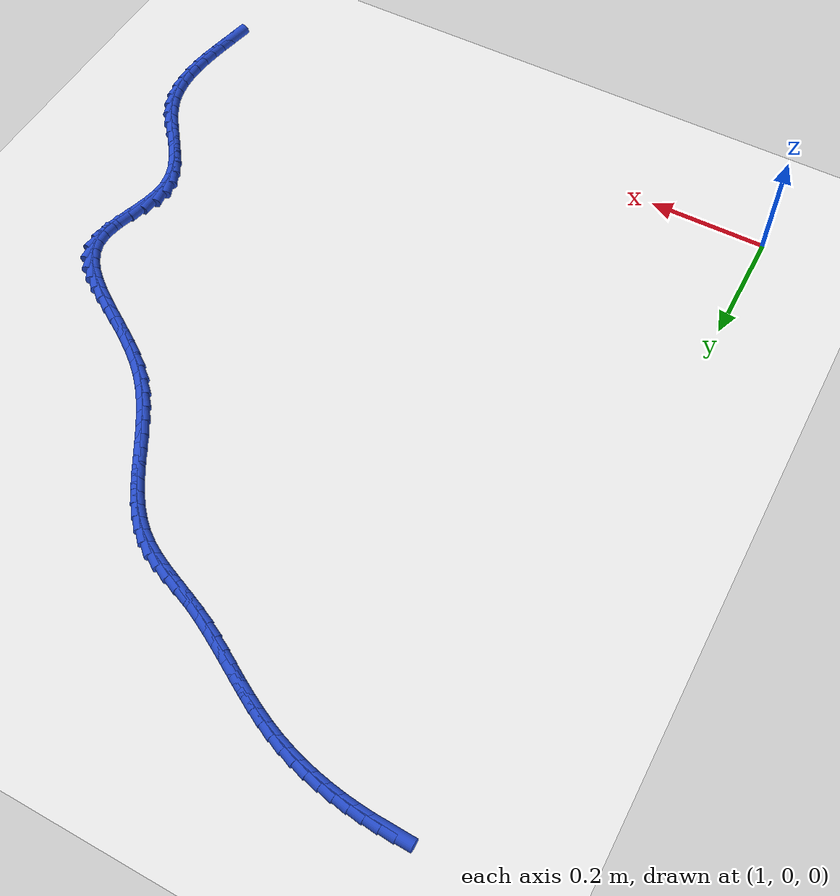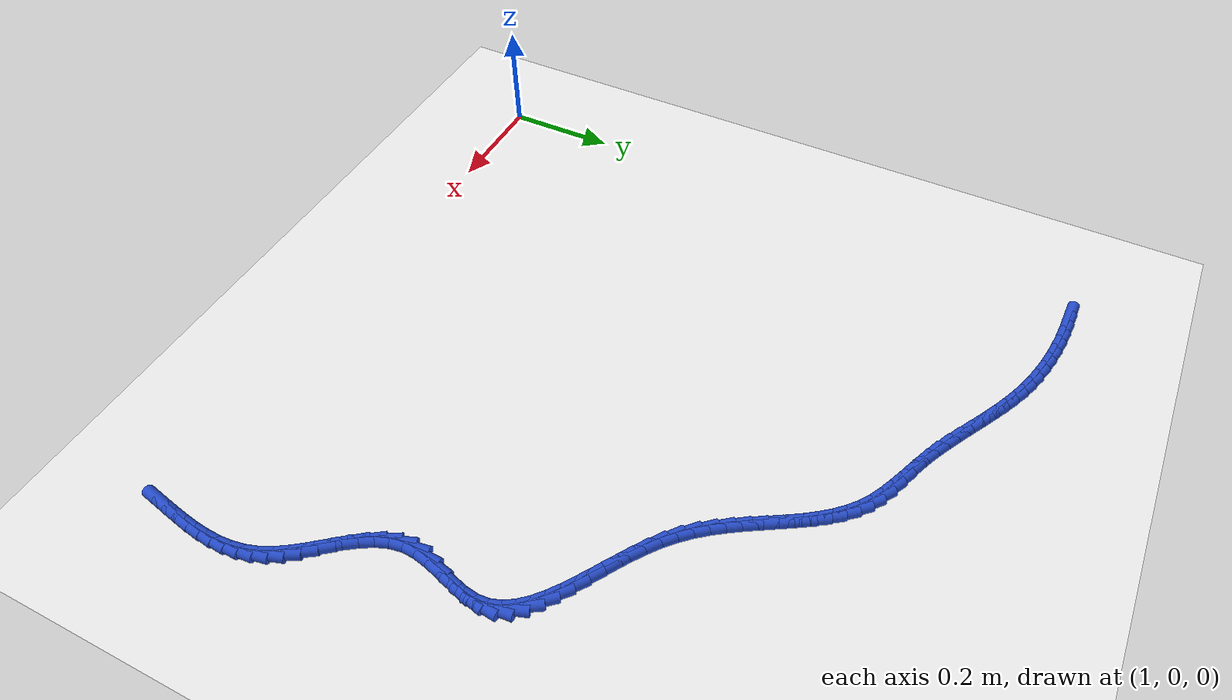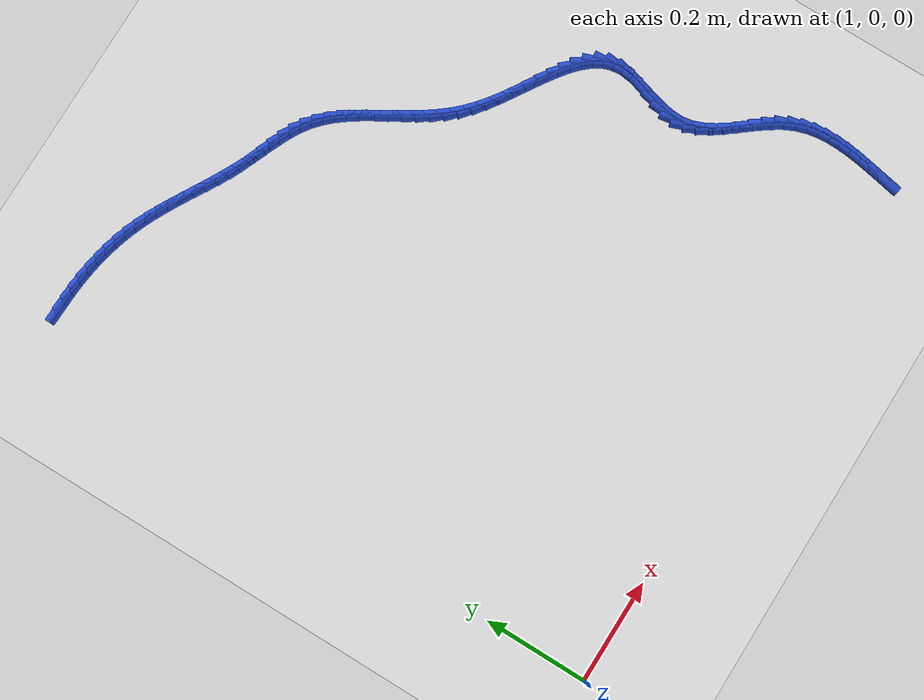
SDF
<sdf version="1.6">
 <world name="default">
  <model name="ground_plane">
   <static>1</static>
   <link name="link">
    <collision name="collision">
     <geometry><plane><normal>0 0 1</normal><size>100 100</size></plane></geometry>
     <surface><friction><ode><mu>100</mu><mu2>50</mu2></ode></friction></surface>
    </collision>
    <visual name="visual">
     <cast_shadows>0</cast_shadows>
     <geometry><plane><normal>0 0 1</normal><size>100 100</size></plane></geometry>
     <material>
      <script><uri>file://media/materials/scripts/gazebo.material</uri><name>Gazebo/WhiteGlow</name></script>
     </material>
    </visual>
   </link>
  </model>
  <model name="line">
   <link name="link_73">
    <pose>1.0784467428985038 1.1476919342570486 0.01 0 1.57 -0.032411989409883456</pose>
    <collision name="collision">
     <geometry><cylinder><radius>0.01</radius><length>0.08</length></cylinder></geometry>
    </collision>
    <visual name="visual">
     <material>
      <script><name>Gazebo/Blue</name><uri>file://media/materials/scripts/gazebo.material</uri></script>
     </material>
     <geometry><cylinder><radius>0.01</radius><length>0.08</length></cylinder></geometry>
    </visual>
   </link>
   <link name="link_74">
    <pose>1.1022425882525988 1.1469203933730785 0.01 0 1.57 -0.07182026784524694</pose>
    <collision name="collision">
     <geometry><cylinder><radius>0.01</radius><length>0.08</length></cylinder></geometry>
    </collision>
    <visual name="visual">
     <material>
      <script><name>Gazebo/Blue</name><uri>file://media/materials/scripts/gazebo.material</uri></script>
     </material>
     <geometry><cylinder><radius>0.01</radius><length>0.08</length></cylinder></geometry>
    </visual>
   </link>
   <link name="link_75">
    <pose>1.1259296271806787 1.1452162528133523 0.01 0 1.57 -0.11244699908991783</pose>
    <collision name="collision">
     <geometry><cylinder><radius>0.01</radius><length>0.08</length></cylinder></geometry>
    </collision>
    <visual name="visual">
     <material>
      <script><name>Gazebo/Blue</name><uri>file://media/materials/scripts/gazebo.material</uri></script>
     </material>
     <geometry><cylinder><radius>0.01</radius><length>0.08</length></cylinder></geometry>
    </visual>
   </link>
   <link name="link_76">
    <pose>1.1494521437725977 1.142560011501114 0.01 0 1.57 -0.1544463301866992</pose>
    <collision name="collision">
     <geometry><cylinder><radius>0.01</radius><length>0.08</length></cylinder></geometry>
    </collision>
    <visual name="visual">
     <material>
      <script><name>Gazebo/Blue</name><uri>file://media/materials/scripts/gazebo.material</uri></script>
     </material>
     <geometry><cylinder><radius>0.01</radius><length>0.08</length></cylinder></geometry>
    </visual>
   </link>
   <link name="link_77">
    <pose>1.1727544221182122 1.1389321683596079 0.01 0 1.57 -0.1979667975714191</pose>
    <collision name="collision">
     <geometry><cylinder><radius>0.01</radius><length>0.08</length></cylinder></geometry>
    </collision>
    <visual name="visual">
     <material>
      <script><name>Gazebo/Blue</name><uri>file://media/materials/scripts/gazebo.material</uri></script>
     </material>
     <geometry><cylinder><radius>0.01</radius><length>0.08</length></cylinder></geometry>
    </visual>
   </link>
   <link name="link_78">
    <pose>1.1957807463073766 1.1343132223120784 0.01 0 1.57 -0.24314838452428156</pose>
    <collision name="collision">
     <geometry><cylinder><radius>0.01</radius><length>0.08</length></cylinder></geometry>
    </collision>
    <visual name="visual">
     <material>
      <script><name>Gazebo/Blue</name><uri>file://media/materials/scripts/gazebo.material</uri></script>
     </material>
     <geometry><cylinder><radius>0.01</radius><length>0.08</length></cylinder></geometry>
    </visual>
   </link>
   <link name="link_79">
    <pose>1.2184754004299467 1.128683672281769 0.01 0 1.57 -0.29011858776635957</pose>
    <collision name="collision">
     <geometry><cylinder><radius>0.01</radius><length>0.08</length></cylinder></geometry>
    </collision>
    <visual name="visual">
     <material>
      <script><name>Gazebo/Blue</name><uri>file://media/materials/scripts/gazebo.material</uri></script>
     </material>
     <geometry><cylinder><radius>0.01</radius><length>0.08</length></cylinder></geometry>
    </visual>
   </link>
   <link name="link_80">
    <pose>1.2407826685757781 1.1220240171919245 0.01 0 1.57 -0.33898741573161895</pose>
    <collision name="collision">
     <geometry><cylinder><radius>0.01</radius><length>0.08</length></cylinder></geometry>
    </collision>
    <visual name="visual">
     <material>
      <script><name>Gazebo/Blue</name><uri>file://media/materials/scripts/gazebo.material</uri></script>
     </material>
     <geometry><cylinder><radius>0.01</radius><length>0.08</length></cylinder></geometry>
    </visual>
   </link>
   <link name="link_81">
    <pose>1.2626468348347253 1.1143147559657889 0.01 0 1.57 -0.3895558671958875</pose>
    <collision name="collision">
     <geometry><cylinder><radius>0.01</radius><length>0.08</length></cylinder></geometry>
    </collision>
    <visual name="visual">
     <material>
      <script><name>Gazebo/Blue</name><uri>file://media/materials/scripts/gazebo.material</uri></script>
     </material>
     <geometry><cylinder><radius>0.01</radius><length>0.08</length></cylinder></geometry>
    </visual>
   </link>
   <link name="link_82">
    <pose>1.284016403053521 1.1055417824618745 0.01 0 1.57 -0.43596270376463087</pose>
    <collision name="collision">
     <geometry><cylinder><radius>0.01</radius><length>0.08</length></cylinder></geometry>
    </collision>
    <visual name="visual">
     <material>
      <script><name>Gazebo/Blue</name><uri>file://media/materials/scripts/gazebo.material</uri></script>
     </material>
     <geometry><cylinder><radius>0.01</radius><length>0.08</length></cylinder></geometry>
    </visual>
   </link>
   <link name="link_83">
    <pose>1.30492587749679 1.095800941585911 0.01 0 1.57 -0.47248397393585767</pose>
    <collision name="collision">
     <geometry><cylinder><radius>0.01</radius><length>0.08</length></cylinder></geometry>
    </collision>
    <visual name="visual">
     <material>
      <script><name>Gazebo/Blue</name><uri>file://media/materials/scripts/gazebo.material</uri></script>
     </material>
     <geometry><cylinder><radius>0.01</radius><length>0.08</length></cylinder></geometry>
    </visual>
   </link>
   <link name="link_84">
    <pose>1.3254900361716824 1.085290707768817 0.01 0 1.57 -0.49875844273661835</pose>
    <collision name="collision">
     <geometry><cylinder><radius>0.01</radius><length>0.08</length></cylinder></geometry>
    </collision>
    <visual name="visual">
     <material>
      <script><name>Gazebo/Blue</name><uri>file://media/materials/scripts/gazebo.material</uri></script>
     </material>
     <geometry><cylinder><radius>0.01</radius><length>0.08</length></cylinder></geometry>
    </visual>
   </link>
   <link name="link_85">
    <pose>1.345826729801968 1.0742134838923088 0.01 0 1.57 -0.5147927376496255</pose>
    <collision name="collision">
     <geometry><cylinder><radius>0.01</radius><length>0.08</length></cylinder></geometry>
    </collision>
    <visual name="visual">
     <material>
      <script><name>Gazebo/Blue</name><uri>file://media/materials/scripts/gazebo.material</uri></script>
     </material>
     <geometry><cylinder><radius>0.01</radius><length>0.08</length></cylinder></geometry>
    </visual>
   </link>
   <link name="link_86">
    <pose>1.3660538091114172 1.0627716728381018 0.01 0 1.57 -0.5206706251174289</pose>
    <collision name="collision">
     <geometry><cylinder><radius>0.01</radius><length>0.08</length></cylinder></geometry>
    </collision>
    <visual name="visual">
     <material>
      <script><name>Gazebo/Blue</name><uri>file://media/materials/scripts/gazebo.material</uri></script>
     </material>
     <geometry><cylinder><radius>0.01</radius><length>0.08</length></cylinder></geometry>
    </visual>
   </link>
   <link name="link_87">
    <pose>1.3862891248237996 1.0511676774879117 0.01 0 1.57 -0.516501979198563</pose>
    <collision name="collision">
     <geometry><cylinder><radius>0.01</radius><length>0.08</length></cylinder></geometry>
    </collision>
    <visual name="visual">
     <material>
      <script><name>Gazebo/Blue</name><uri>file://media/materials/scripts/gazebo.material</uri></script>
     </material>
     <geometry><cylinder><radius>0.01</radius><length>0.08</length></cylinder></geometry>
    </visual>
   </link>
   <link name="link_88">
    <pose>1.4066505276628851 1.0396039007234548 0.01 0 1.57 -0.5024041049356002</pose>
    <collision name="collision">
     <geometry><cylinder><radius>0.01</radius><length>0.08</length></cylinder></geometry>
    </collision>
    <visual name="visual">
     <material>
      <script><name>Gazebo/Blue</name><uri>file://media/materials/scripts/gazebo.material</uri></script>
     </material>
     <geometry><cylinder><radius>0.01</radius><length>0.08</length></cylinder></geometry>
    </visual>
   </link>
   <link name="link_89">
    <pose>1.4272558683524432 1.028282745426446 0.01 0 1.57 -0.4785135246268793</pose>
    <collision name="collision">
     <geometry><cylinder><radius>0.01</radius><length>0.08</length></cylinder></geometry>
    </collision>
    <visual name="visual">
     <material>
      <script><name>Gazebo/Blue</name><uri>file://media/materials/scripts/gazebo.material</uri></script>
     </material>
     <geometry><cylinder><radius>0.01</radius><length>0.08</length></cylinder></geometry>
    </visual>
   </link>
   <link name="link_90">
    <pose>1.448222997616245 1.0174066144786018 0.01 0 1.57 -0.44502557548570587</pose>
    <collision name="collision">
     <geometry><cylinder><radius>0.01</radius><length>0.08</length></cylinder></geometry>
    </collision>
    <visual name="visual">
     <material>
      <script><name>Gazebo/Blue</name><uri>file://media/materials/scripts/gazebo.material</uri></script>
     </material>
     <geometry><cylinder><radius>0.01</radius><length>0.08</length></cylinder></geometry>
    </visual>
   </link>
   <link name="link_91">
    <pose>1.469669765419482 1.0071779098291722 0.01 0 1.57 -0.40865996470542537</pose>
    <collision name="collision">
     <geometry><cylinder><radius>0.01</radius><length>0.08</length></cylinder></geometry>
    </collision>
    <visual name="visual">
     <material>
      <script><name>Gazebo/Blue</name><uri>file://media/materials/scripts/gazebo.material</uri></script>
     </material>
     <geometry><cylinder><radius>0.01</radius><length>0.08</length></cylinder></geometry>
    </visual>
   </link>
   <link name="link_92">
    <pose>1.491613469087309 0.9976754312734928 0.01 0 1.57 -0.39337908089786666</pose>
    <collision name="collision">
     <geometry><cylinder><radius>0.01</radius><length>0.08</length></cylinder></geometry>
    </collision>
    <visual name="visual">
     <material>
      <script><name>Gazebo/Blue</name><uri>file://media/materials/scripts/gazebo.material</uri></script>
     </material>
     <geometry><cylinder><radius>0.01</radius><length>0.08</length></cylinder></geometry>
    </visual>
   </link>
   <link name="link_93">
    <pose>1.5136926130683188 0.9885123556713457 0.01 0 1.57 -0.40460956249673935</pose>
    <collision name="collision">
     <geometry><cylinder><radius>0.01</radius><length>0.08</length></cylinder></geometry>
    </collision>
    <visual name="visual">
     <material>
      <script><name>Gazebo/Blue</name><uri>file://media/materials/scripts/gazebo.material</uri></script>
     </material>
     <geometry><cylinder><radius>0.01</radius><length>0.08</length></cylinder></geometry>
    </visual>
   </link>
   <link name="link_94">
    <pose>1.5354565209061866 0.9791922361875839 0.01 0 1.57 -0.4434313350638356</pose>
    <collision name="collision">
     <geometry><cylinder><radius>0.01</radius><length>0.08</length></cylinder></geometry>
    </collision>
    <visual name="visual">
     <material>
      <script><name>Gazebo/Blue</name><uri>file://media/materials/scripts/gazebo.material</uri></script>
     </material>
     <geometry><cylinder><radius>0.01</radius><length>0.08</length></cylinder></geometry>
    </visual>
   </link>
   <link name="link_95">
    <pose>1.5564545161445869 0.96921862598706 0.01 0 1.57 -0.5122553036412957</pose>
    <collision name="collision">
     <geometry><cylinder><radius>0.01</radius><length>0.08</length></cylinder></geometry>
    </collision>
    <visual name="visual">
     <material>
      <script><name>Gazebo/Blue</name><uri>file://media/materials/scripts/gazebo.material</uri></script>
     </material>
     <geometry><cylinder><radius>0.01</radius><length>0.08</length></cylinder></geometry>
    </visual>
   </link>
   <link name="link_96">
    <pose>1.5762359223271944 0.9580950782346264 0.01 0 1.57 -0.6133424232099304</pose>
    <collision name="collision">
     <geometry><cylinder><radius>0.01</radius><length>0.08</length></cylinder></geometry>
    </collision>
    <visual name="visual">
     <material>
      <script><name>Gazebo/Blue</name><uri>file://media/materials/scripts/gazebo.material</uri></script>
     </material>
     <geometry><cylinder><radius>0.01</radius><length>0.08</length></cylinder></geometry>
    </visual>
   </link>
   <link name="link_97">
    <pose>1.5943615373766453 0.9453363547408489 0.01 0 1.57 -0.7266050376617922</pose>
    <collision name="collision">
     <geometry><cylinder><radius>0.01</radius><length>0.08</length></cylinder></geometry>
    </collision>
    <visual name="visual">
     <material>
      <script><name>Gazebo/Blue</name><uri>file://media/materials/scripts/gazebo.material</uri></script>
     </material>
     <geometry><cylinder><radius>0.01</radius><length>0.08</length></cylinder></geometry>
    </visual>
   </link>
   <link name="link_98">
    <pose>1.610730251431063 0.9307874797100338 0.01 0 1.57 -0.8247679660352057</pose>
    <collision name="collision">
     <geometry><cylinder><radius>0.01</radius><length>0.08</length></cylinder></geometry>
    </collision>
    <visual name="visual">
     <material>
      <script><name>Gazebo/Blue</name><uri>file://media/materials/scripts/gazebo.material</uri></script>
     </material>
     <geometry><cylinder><radius>0.01</radius><length>0.08</length></cylinder></geometry>
    </visual>
   </link>
   <link name="link_99">
    <pose>1.6256262498714764 0.914669849600528 0.01 0 1.57 -0.9040466013033118</pose>
    <collision name="collision">
     <geometry><cylinder><radius>0.01</radius><length>0.08</length></cylinder></geometry>
    </collision>
    <visual name="visual">
     <material>
      <script><name>Gazebo/Blue</name><uri>file://media/materials/scripts/gazebo.material</uri></script>
     </material>
     <geometry><cylinder><radius>0.01</radius><length>0.08</length></cylinder></geometry>
    </visual>
   </link>
   <link name="link_100">
    <pose>1.639354683639745 0.8972253408935515 0.01 0 1.57 -0.9638704088971833</pose>
    <collision name="collision">
     <geometry><cylinder><radius>0.01</radius><length>0.08</length></cylinder></geometry>
    </collision>
    <visual name="visual">
     <material>
      <script><name>Gazebo/Blue</name><uri>file://media/materials/scripts/gazebo.material</uri></script>
     </material>
     <geometry><cylinder><radius>0.01</radius><length>0.08</length></cylinder></geometry>
    </visual>
   </link>
   <link name="link_101">
    <pose>1.6522207036777286 0.8786958300703258 0.01 0 1.57 -1.0047759417688586</pose>
    <collision name="collision">
     <geometry><cylinder><radius>0.01</radius><length>0.08</length></cylinder></geometry>
    </collision>
    <visual name="visual">
     <material>
      <script><name>Gazebo/Blue</name><uri>file://media/materials/scripts/gazebo.material</uri></script>
     </material>
     <geometry><cylinder><radius>0.01</radius><length>0.08</length></cylinder></geometry>
    </visual>
   </link>
   <link name="link_102">
    <pose>1.664529460927288 0.85932319361207 0.01 0 1.57 -1.0277189978190664</pose>
    <collision name="collision">
     <geometry><cylinder><radius>0.01</radius><length>0.08</length></cylinder></geometry>
    </collision>
    <visual name="visual">
     <material>
      <script><name>Gazebo/Blue</name><uri>file://media/materials/scripts/gazebo.material</uri></script>
     </material>
     <geometry><cylinder><radius>0.01</radius><length>0.08</length></cylinder></geometry>
    </visual>
   </link>
   <link name="link_103">
    <pose>1.6765861063302832 0.8393493080000056 0.01 0 1.57 -1.033647594485761</pose>
    <collision name="collision">
     <geometry><cylinder><radius>0.01</radius><length>0.08</length></cylinder></geometry>
    </collision>
    <visual name="visual">
     <material>
      <script><name>Gazebo/Blue</name><uri>file://media/materials/scripts/gazebo.material</uri></script>
     </material>
     <geometry><cylinder><radius>0.01</radius><length>0.08</length></cylinder></geometry>
    </visual>
   </link>
   <link name="link_104">
    <pose>1.688695790828575 0.8190160497153529 0.01 0 1.57 -1.023308867074047</pose>
    <collision name="collision">
     <geometry><cylinder><radius>0.01</radius><length>0.08</length></cylinder></geometry>
    </collision>
    <visual name="visual">
     <material>
      <script><name>Gazebo/Blue</name><uri>file://media/materials/scripts/gazebo.material</uri></script>
     </material>
     <geometry><cylinder><radius>0.01</radius><length>0.08</length></cylinder></geometry>
    </visual>
   </link>
   <link name="link_105">
    <pose>1.7011636653640225 0.7985652952393324 0.01 0 1.57 -0.9972250849934721</pose>
    <collision name="collision">
     <geometry><cylinder><radius>0.01</radius><length>0.08</length></cylinder></geometry>
    </collision>
    <visual name="visual">
     <material>
      <script><name>Gazebo/Blue</name><uri>file://media/materials/scripts/gazebo.material</uri></script>
     </material>
     <geometry><cylinder><radius>0.01</radius><length>0.08</length></cylinder></geometry>
    </visual>
   </link>
   <link name="link_106">
    <pose>1.7142948808784868 0.7782389210531651 0.01 0 1.57 -0.9557919567769172</pose>
    <collision name="collision">
     <geometry><cylinder><radius>0.01</radius><length>0.08</length></cylinder></geometry>
    </collision>
    <visual name="visual">
     <material>
      <script><name>Gazebo/Blue</name><uri>file://media/materials/scripts/gazebo.material</uri></script>
     </material>
     <geometry><cylinder><radius>0.01</radius><length>0.08</length></cylinder></geometry>
    </visual>
   </link>
   <link name="link_107">
    <pose>1.7283945883138283 0.758278803638071 0.01 0 1.57 -0.8994751108956559</pose>
    <collision name="collision">
     <geometry><cylinder><radius>0.01</radius><length>0.08</length></cylinder></geometry>
    </collision>
    <visual name="visual">
     <material>
      <script><name>Gazebo/Blue</name><uri>file://media/materials/scripts/gazebo.material</uri></script>
     </material>
     <geometry><cylinder><radius>0.01</radius><length>0.08</length></cylinder></geometry>
    </visual>
   </link>
   <link name="link_108">
    <pose>1.743767938611906 0.738926819475271 0.01 0 1.57 -0.8290840407420598</pose>
    <collision name="collision">
     <geometry><cylinder><radius>0.01</radius><length>0.08</length></cylinder></geometry>
    </collision>
    <visual name="visual">
     <material>
      <script><name>Gazebo/Blue</name><uri>file://media/materials/scripts/gazebo.material</uri></script>
     </material>
     <geometry><cylinder><radius>0.01</radius><length>0.08</length></cylinder></geometry>
    </visual>
   </link>
   <link name="link_109">
    <pose>1.760720082714581 0.720424845045985 0.01 0 1.57 -0.7465015414757359</pose>
    <collision name="collision">
     <geometry><cylinder><radius>0.01</radius><length>0.08</length></cylinder></geometry>
    </collision>
    <visual name="visual">
     <material>
      <script><name>Gazebo/Blue</name><uri>file://media/materials/scripts/gazebo.material</uri></script>
     </material>
     <geometry><cylinder><radius>0.01</radius><length>0.08</length></cylinder></geometry>
    </visual>
   </link>
   <link name="link_110">
    <pose>1.7795460689928937 0.7030092453856823 0.01 0 1.57 -0.6688742627058977</pose>
    <collision name="collision">
     <geometry><cylinder><radius>0.01</radius><length>0.08</length></cylinder></geometry>
    </collision>
    <visual name="visual">
     <material>
      <script><name>Gazebo/Blue</name><uri>file://media/materials/scripts/gazebo.material</uri></script>
     </material>
     <geometry><cylinder><radius>0.01</radius><length>0.08</length></cylinder></geometry>
    </visual>
   </link>
   <link name="link_111">
    <pose>1.8001652016699177 0.6867113987472433 0.01 0 1.57 -0.6141756077364571</pose>
    <collision name="collision">
     <geometry><cylinder><radius>0.01</radius><length>0.08</length></cylinder></geometry>
    </collision>
    <visual name="visual">
     <material>
      <script><name>Gazebo/Blue</name><uri>file://media/materials/scripts/gazebo.material</uri></script>
     </material>
     <geometry><cylinder><radius>0.01</radius><length>0.08</length></cylinder></geometry>
    </visual>
   </link>
   <link name="link_112">
    <pose>1.8220182895036416 0.6713016407395035 0.01 0 1.57 -0.5809030800904089</pose>
    <collision name="collision">
     <geometry><cylinder><radius>0.01</radius><length>0.08</length></cylinder></geometry>
    </collision>
    <visual name="visual">
     <material>
      <script><name>Gazebo/Blue</name><uri>file://media/materials/scripts/gazebo.material</uri></script>
     </material>
     <geometry><cylinder><radius>0.01</radius><length>0.08</length></cylinder></geometry>
    </visual>
   </link>
   <link name="link_113">
    <pose>1.844515111227423 0.6565333785774754 0.01 0 1.57 -0.567459454393806</pose>
    <collision name="collision">
     <geometry><cylinder><radius>0.01</radius><length>0.08</length></cylinder></geometry>
    </collision>
    <visual name="visual">
     <material>
      <script><name>Gazebo/Blue</name><uri>file://media/materials/scripts/gazebo.material</uri></script>
     </material>
     <geometry><cylinder><radius>0.01</radius><length>0.08</length></cylinder></geometry>
    </visual>
   </link>
   <link name="link_114">
    <pose>1.8670654455746174 0.6421600194761722 0.01 0 1.57 -0.5736942247701369</pose>
    <collision name="collision">
     <geometry><cylinder><radius>0.01</radius><length>0.08</length></cylinder></geometry>
    </collision>
    <visual name="visual">
     <material>
      <script><name>Gazebo/Blue</name><uri>file://media/materials/scripts/gazebo.material</uri></script>
     </material>
     <geometry><cylinder><radius>0.01</radius><length>0.08</length></cylinder></geometry>
    </visual>
   </link>
   <link name="link_115">
    <pose>1.8890790712785814 0.6279349706506065 0.01 0 1.57 -0.6011071540610047</pose>
    <collision name="collision">
     <geometry><cylinder><radius>0.01</radius><length>0.08</length></cylinder></geometry>
    </collision>
    <visual name="visual">
     <material>
      <script><name>Gazebo/Blue</name><uri>file://media/materials/scripts/gazebo.material</uri></script>
     </material>
     <geometry><cylinder><radius>0.01</radius><length>0.08</length></cylinder></geometry>
    </visual>
   </link>
   <link name="link_116">
    <pose>1.9099657670726713 0.6136116393157911 0.01 0 1.57 -0.6531475254196246</pose>
    <collision name="collision">
     <geometry><cylinder><radius>0.01</radius><length>0.08</length></cylinder></geometry>
    </collision>
    <visual name="visual">
     <material>
      <script><name>Gazebo/Blue</name><uri>file://media/materials/scripts/gazebo.material</uri></script>
     </material>
     <geometry><cylinder><radius>0.01</radius><length>0.08</length></cylinder></geometry>
    </visual>
   </link>
   <link name="link_117">
    <pose>1.9291353116902434 0.5989434326867396 0.01 0 1.57 -0.7355514030129778</pose>
    <collision name="collision">
     <geometry><cylinder><radius>0.01</radius><length>0.08</length></cylinder></geometry>
    </collision>
    <visual name="visual">
     <material>
      <script><name>Gazebo/Blue</name><uri>file://media/materials/scripts/gazebo.material</uri></script>
     </material>
     <geometry><cylinder><radius>0.01</radius><length>0.08</length></cylinder></geometry>
    </visual>
   </link>
   <link name="link_118">
    <pose>1.9459974838646545 0.5836837579784636 0.01 0 1.57 -0.8562372785107829</pose>
    <collision name="collision">
     <geometry><cylinder><radius>0.01</radius><length>0.08</length></cylinder></geometry>
    </collision>
    <visual name="visual">
     <material>
      <script><name>Gazebo/Blue</name><uri>file://media/materials/scripts/gazebo.material</uri></script>
     </material>
     <geometry><cylinder><radius>0.01</radius><length>0.08</length></cylinder></geometry>
    </visual>
   </link>
   <link name="link_119">
    <pose>1.9599620623292606 0.5675860224059768 0.01 0 1.57 -1.0232469505048085</pose>
    <collision name="collision">
     <geometry><cylinder><radius>0.01</radius><length>0.08</length></cylinder></geometry>
    </collision>
    <visual name="visual">
     <material>
      <script><name>Gazebo/Blue</name><uri>file://media/materials/scripts/gazebo.material</uri></script>
     </material>
     <geometry><cylinder><radius>0.01</radius><length>0.08</length></cylinder></geometry>
    </visual>
   </link>
   <link name="link_120">
    <pose>1.970438825817418 0.5504036331842918 0.01 0 1.57 -1.2380266815886771</pose>
    <collision name="collision">
     <geometry><cylinder><radius>0.01</radius><length>0.08</length></cylinder></geometry>
    </collision>
    <visual name="visual">
     <material>
      <script><name>Gazebo/Blue</name><uri>file://media/materials/scripts/gazebo.material</uri></script>
     </material>
     <geometry><cylinder><radius>0.01</radius><length>0.08</length></cylinder></geometry>
    </visual>
   </link>
   <link name="link_121">
    <pose>1.9768375530624822 0.5318899975284214 0.01 0 1.57 -1.4842856521094643</pose>
    <collision name="collision">
     <geometry><cylinder><radius>0.01</radius><length>0.08</length></cylinder></geometry>
    </collision>
    <visual name="visual">
     <material>
      <script><name>Gazebo/Blue</name><uri>file://media/materials/scripts/gazebo.material</uri></script>
     </material>
     <geometry><cylinder><radius>0.01</radius><length>0.08</length></cylinder></geometry>
    </visual>
   </link>
   <link name="link_122">
    <pose>1.9785797106943552 0.5118021955390406 0.01 0 1.57 1.4468885228287798</pose>
    <collision name="collision">
     <geometry><cylinder><radius>0.01</radius><length>0.08</length></cylinder></geometry>
    </collision>
    <visual name="visual">
     <material>
      <script><name>Gazebo/Blue</name><uri>file://media/materials/scripts/gazebo.material</uri></script>
     </material>
     <geometry><cylinder><radius>0.01</radius><length>0.08</length></cylinder></geometry>
    </visual>
   </link>
   <link name="link_123">
    <pose>1.9758826992076246 0.49014742709402104 0.01 0 1.57 1.3289082129138703</pose>
    <collision name="collision">
     <geometry><cylinder><radius>0.01</radius><length>0.08</length></cylinder></geometry>
    </collision>
    <visual name="visual">
     <material>
      <script><name>Gazebo/Blue</name><uri>file://media/materials/scripts/gazebo.material</uri></script>
     </material>
     <geometry><cylinder><radius>0.01</radius><length>0.08</length></cylinder></geometry>
    </visual>
   </link>
   <link name="link_124">
    <pose>1.9702553630770485 0.46733872438333135 0.01 0 1.57 1.284147908178179</pose>
    <collision name="collision">
     <geometry><cylinder><radius>0.01</radius><length>0.08</length></cylinder></geometry>
    </collision>
    <visual name="visual">
     <material>
      <script><name>Gazebo/Blue</name><uri>file://media/materials/scripts/gazebo.material</uri></script>
     </material>
     <geometry><cylinder><radius>0.01</radius><length>0.08</length></cylinder></geometry>
    </visual>
   </link>
   <link name="link_125">
    <pose>1.9633246733299161 0.44382624050397773 0.01 0 1.57 1.299639543792963</pose>
    <collision name="collision">
     <geometry><cylinder><radius>0.01</radius><length>0.08</length></cylinder></geometry>
    </collision>
    <visual name="visual">
     <material>
      <script><name>Gazebo/Blue</name><uri>file://media/materials/scripts/gazebo.material</uri></script>
     </material>
     <geometry><cylinder><radius>0.01</radius><length>0.08</length></cylinder></geometry>
    </visual>
   </link>
   <link name="link_126">
    <pose>1.9567176009935139 0.42006012855296715 0.01 0 1.57 1.3757449020481478</pose>
    <collision name="collision">
     <geometry><cylinder><radius>0.01</radius><length>0.08</length></cylinder></geometry>
    </collision>
    <visual name="visual">
     <material>
      <script><name>Gazebo/Blue</name><uri>file://media/materials/scripts/gazebo.material</uri></script>
     </material>
     <geometry><cylinder><radius>0.01</radius><length>0.08</length></cylinder></geometry>
    </visual>
   </link>
   <link name="link_127">
    <pose>1.9520611170951316 0.39649054162730646 0.01 0 1.57 1.523763519245611</pose>
    <collision name="collision">
     <geometry><cylinder><radius>0.01</radius><length>0.08</length></cylinder></geometry>
    </collision>
    <visual name="visual">
     <material>
      <script><name>Gazebo/Blue</name><uri>file://media/materials/scripts/gazebo.material</uri></script>
     </material>
     <geometry><cylinder><radius>0.01</radius><length>0.08</length></cylinder></geometry>
    </visual>
   </link>
   <link name="link_128">
    <pose>1.9509821926620554 0.373567632824002 0.01 0 1.57 -1.4024058564224735</pose>
    <collision name="collision">
     <geometry><cylinder><radius>0.01</radius><length>0.08</length></cylinder></geometry>
    </collision>
    <visual name="visual">
     <material>
      <script><name>Gazebo/Blue</name><uri>file://media/materials/scripts/gazebo.material</uri></script>
     </material>
     <geometry><cylinder><radius>0.01</radius><length>0.08</length></cylinder></geometry>
    </visual>
   </link>
   <link name="link_129">
    <pose>1.9547095665044507 0.35164194590489445 0.01 0 1.57 -1.2065883360785936</pose>
    <collision name="collision">
     <geometry><cylinder><radius>0.01</radius><length>0.08</length></cylinder></geometry>
    </collision>
    <visual name="visual">
     <material>
      <script><name>Gazebo/Blue</name><uri>file://media/materials/scripts/gazebo.material</uri></script>
     </material>
     <geometry><cylinder><radius>0.01</radius><length>0.08</length></cylinder></geometry>
    </visual>
   </link>
   <link name="link_130">
    <pose>1.9627211210894417 0.3306260850859955 0.01 0 1.57 -1.063428244472695</pose>
    <collision name="collision">
     <geometry><cylinder><radius>0.01</radius><length>0.08</length></cylinder></geometry>
    </collision>
    <visual name="visual">
     <material>
      <script><name>Gazebo/Blue</name><uri>file://media/materials/scripts/gazebo.material</uri></script>
     </material>
     <geometry><cylinder><radius>0.01</radius><length>0.08</length></cylinder></geometry>
    </visual>
   </link>
   <link name="link_131">
    <pose>1.9740137055657805 0.3103123343104316 0.01 0 1.57 -0.9704081940214302</pose>
    <collision name="collision">
     <geometry><cylinder><radius>0.01</radius><length>0.08</length></cylinder></geometry>
    </collision>
    <visual name="visual">
     <material>
      <script><name>Gazebo/Blue</name><uri>file://media/materials/scripts/gazebo.material</uri></script>
     </material>
     <geometry><cylinder><radius>0.01</radius><length>0.08</length></cylinder></geometry>
    </visual>
   </link>
   <link name="link_132">
    <pose>1.9875841553913303 0.2904929740968442 0.01 0 1.57 -0.9209159182224874</pose>
    <collision name="collision">
     <geometry><cylinder><radius>0.01</radius><length>0.08</length></cylinder></geometry>
    </collision>
    <visual name="visual">
     <material>
      <script><name>Gazebo/Blue</name><uri>file://media/materials/scripts/gazebo.material</uri></script>
     </material>
     <geometry><cylinder><radius>0.01</radius><length>0.08</length></cylinder></geometry>
    </visual>
   </link>
   <link name="link_133">
    <pose>2.0024293060239526 0.2709602849638748 0.01 0 1.57 -0.9102016465502357</pose>
    <collision name="collision">
     <geometry><cylinder><radius>0.01</radius><length>0.08</length></cylinder></geometry>
    </collision>
    <visual name="visual">
     <material>
      <script><name>Gazebo/Blue</name><uri>file://media/materials/scripts/gazebo.material</uri></script>
     </material>
     <geometry><cylinder><radius>0.01</radius><length>0.08</length></cylinder></geometry>
    </visual>
   </link>
   <link name="link_134">
    <pose>2.0175459929215114 0.25150654743016443 0.01 0 1.57 -0.9372325770395451</pose>
    <collision name="collision">
     <geometry><cylinder><radius>0.01</radius><length>0.08</length></cylinder></geometry>
    </collision>
    <visual name="visual">
     <material>
      <script><name>Gazebo/Blue</name><uri>file://media/materials/scripts/gazebo.material</uri></script>
     </material>
     <geometry><cylinder><radius>0.01</radius><length>0.08</length></cylinder></geometry>
    </visual>
   </link>
   <link name="link_135">
    <pose>2.031931051541871 0.2319240420143547 0.01 0 1.57 -1.0049772856196506</pose>
    <collision name="collision">
     <geometry><cylinder><radius>0.01</radius><length>0.08</length></cylinder></geometry>
    </collision>
    <visual name="visual">
     <material>
      <script><name>Gazebo/Blue</name><uri>file://media/materials/scripts/gazebo.material</uri></script>
     </material>
     <geometry><cylinder><radius>0.01</radius><length>0.08</length></cylinder></geometry>
    </visual>
   </link>
   <link name="link_136">
    <pose>2.044581317342892 0.21200504923508698 0.01 0 1.57 -1.1187679161488098</pose>
    <collision name="collision">
     <geometry><cylinder><radius>0.01</radius><length>0.08</length></cylinder></geometry>
    </collision>
    <visual name="visual">
     <material>
      <script><name>Gazebo/Blue</name><uri>file://media/materials/scripts/gazebo.material</uri></script>
     </material>
     <geometry><cylinder><radius>0.01</radius><length>0.08</length></cylinder></geometry>
    </visual>
   </link>
   <link name="link_137">
    <pose>2.0545153995016787 0.1915459966754106 0.01 0 1.57 -1.2563689993735494</pose>
    <collision name="collision">
     <geometry><cylinder><radius>0.01</radius><length>0.08</length></cylinder></geometry>
    </collision>
    <visual name="visual">
     <material>
      <script><name>Gazebo/Blue</name><uri>file://media/materials/scripts/gazebo.material</uri></script>
     </material>
     <geometry><cylinder><radius>0.01</radius><length>0.08</length></cylinder></geometry>
    </visual>
   </link>
   <link name="link_138">
    <pose>2.06137241835671 0.17046149566657273 0.01 0 1.57 -1.3831022833476831</pose>
    <collision name="collision">
     <geometry><cylinder><radius>0.01</radius><length>0.08</length></cylinder></geometry>
    </collision>
    <visual name="visual">
     <material>
      <script><name>Gazebo/Blue</name><uri>file://media/materials/scripts/gazebo.material</uri></script>
     </material>
     <geometry><cylinder><radius>0.01</radius><length>0.08</length></cylinder></geometry>
    </visual>
   </link>
   <link name="link_139">
    <pose>2.0654868453388184 0.14879859544508872 0.01 0 1.57 -1.4923937860078265</pose>
    <collision name="collision">
     <geometry><cylinder><radius>0.01</radius><length>0.08</length></cylinder></geometry>
    </collision>
    <visual name="visual">
     <material>
      <script><name>Gazebo/Blue</name><uri>file://media/materials/scripts/gazebo.material</uri></script>
     </material>
     <geometry><cylinder><radius>0.01</radius><length>0.08</length></cylinder></geometry>
    </visual>
   </link>
   <link name="link_140">
    <pose>2.0672299544543082 0.12661135473672006 0.01 0 1.57 1.5594568816903143</pose>
    <collision name="collision">
     <geometry><cylinder><radius>0.01</radius><length>0.08</length></cylinder></geometry>
    </collision>
    <visual name="visual">
     <material>
      <script><name>Gazebo/Blue</name><uri>file://media/materials/scripts/gazebo.material</uri></script>
     </material>
     <geometry><cylinder><radius>0.01</radius><length>0.08</length></cylinder></geometry>
    </visual>
   </link>
   <link name="link_141">
    <pose>2.0669730197094838 0.10395383226722713 0.01 0 1.57 1.4892524292710345</pose>
    <collision name="collision">
     <geometry><cylinder><radius>0.01</radius><length>0.08</length></cylinder></geometry>
    </collision>
    <visual name="visual">
     <material>
      <script><name>Gazebo/Blue</name><uri>file://media/materials/scripts/gazebo.material</uri></script>
     </material>
     <geometry><cylinder><radius>0.01</radius><length>0.08</length></cylinder></geometry>
    </visual>
   </link>
   <link name="link_142">
    <pose>2.0650873151106497 0.08088008676237142 0.01 0 1.57 1.437472945194259</pose>
    <collision name="collision">
     <geometry><cylinder><radius>0.01</radius><length>0.08</length></cylinder></geometry>
    </collision>
    <visual name="visual">
     <material>
      <script><name>Gazebo/Blue</name><uri>file://media/materials/scripts/gazebo.material</uri></script>
     </material>
     <geometry><cylinder><radius>0.01</radius><length>0.08</length></cylinder></geometry>
    </visual>
   </link>
   <link name="link_143">
    <pose>2.0619441146641106 0.05744417694791397 0.01 0 1.57 1.402695183712883</pose>
    <collision name="collision">
     <geometry><cylinder><radius>0.01</radius><length>0.08</length></cylinder></geometry>
    </collision>
    <visual name="visual">
     <material>
      <script><name>Gazebo/Blue</name><uri>file://media/materials/scripts/gazebo.material</uri></script>
     </material>
     <geometry><cylinder><radius>0.01</radius><length>0.08</length></cylinder></geometry>
    </visual>
   </link>
   <link name="link_144">
    <pose>2.0579146923761704 0.03370016154961593 0.01 0 1.57 1.3836482494489932</pose>
    <collision name="collision">
     <geometry><cylinder><radius>0.01</radius><length>0.08</length></cylinder></geometry>
    </collision>
    <visual name="visual">
     <material>
      <script><name>Gazebo/Blue</name><uri>file://media/materials/scripts/gazebo.material</uri></script>
     </material>
     <geometry><cylinder><radius>0.01</radius><length>0.08</length></cylinder></geometry>
    </visual>
   </link>
   <link name="link_145">
    <pose>2.053370322253133 0.009702099293238408 0.01 0 1.57 1.379430618316329</pose>
    <collision name="collision">
     <geometry><cylinder><radius>0.01</radius><length>0.08</length></cylinder></geometry>
    </collision>
    <visual name="visual">
     <material>
      <script><name>Gazebo/Blue</name><uri>file://media/materials/scripts/gazebo.material</uri></script>
     </material>
     <geometry><cylinder><radius>0.01</radius><length>0.08</length></cylinder></geometry>
    </visual>
   </link>
  </model>
 </world>
</sdf>
